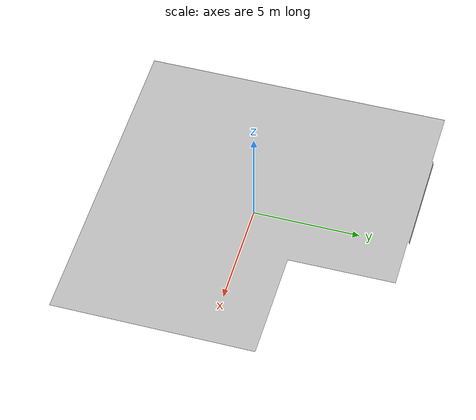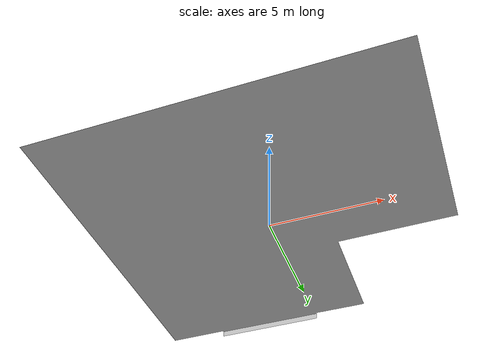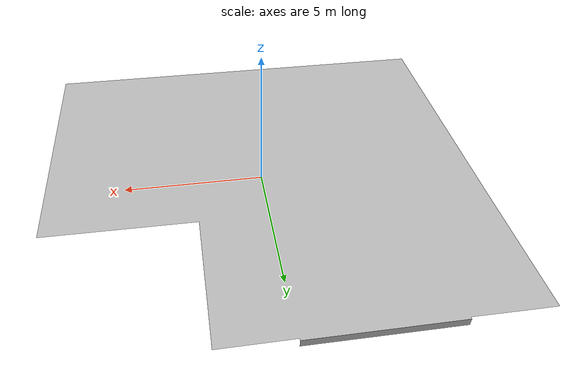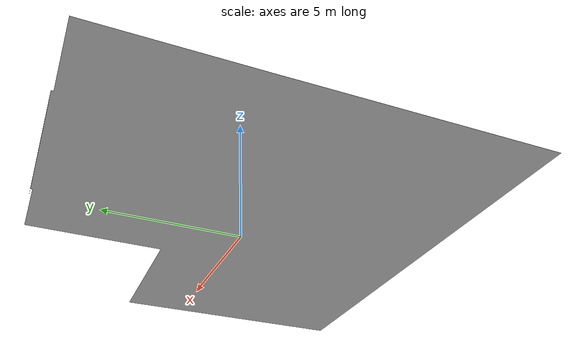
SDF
<?xml version="1.0" ?>
<sdf version="1.6">
  <model name="aws_robomaker_retail_RetailShopFloor_01">
    <link name="link">
      <inertial>
        <mass>100</mass>
      </inertial>
      <collision name="collision">
        <geometry>
          <mesh>
            <uri>file://models/aws_robomaker_retail_RetailShopFloor_01/meshes/aws_RetailShopFloor_01_collision.DAE</uri>
            <scale>1 1 1</scale>
          </mesh>
        </geometry>
        <surface>
          <friction>
            <ode>
              <mu>100</mu>
              <mu2>50</mu2>
            </ode>
          </friction>
        </surface>
      </collision>
      <visual name="visual">
	    <geometry>
          <mesh>
            <uri>file://models/aws_robomaker_retail_RetailShopFloor_01/meshes/aws_RetailShopFloor_01_visual.DAE</uri>
          </mesh>
        </geometry>
        <meta>
          <layer>1</layer>
        </meta>
      </visual>
	</link>
	<static>1</static>
  </model>
</sdf>
